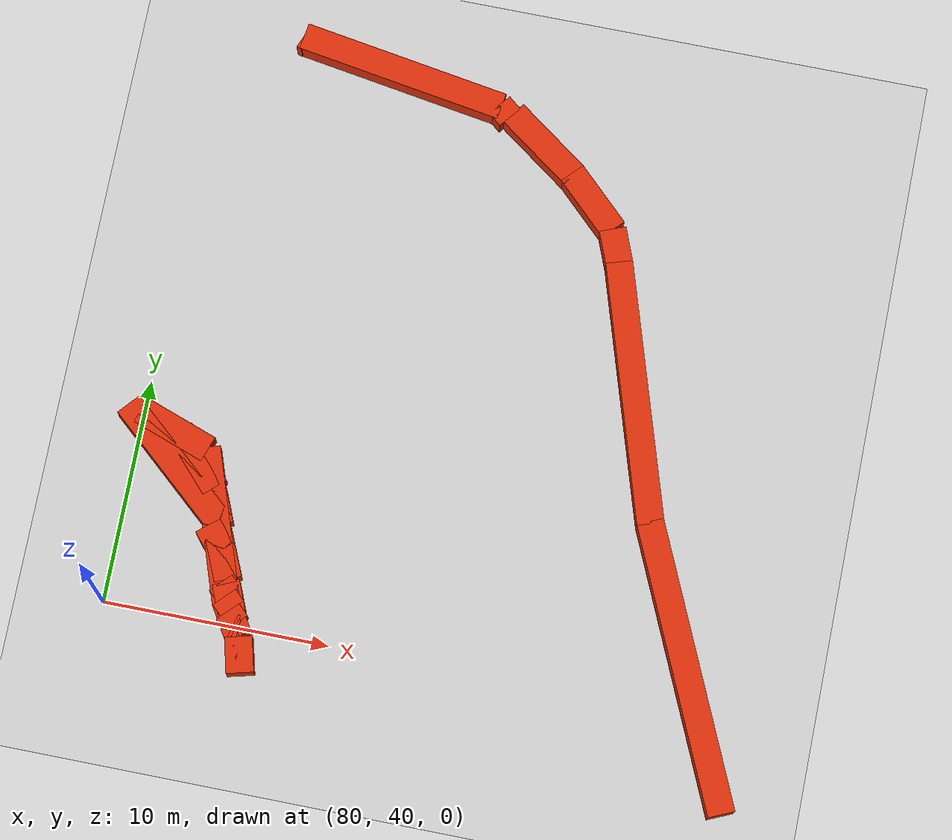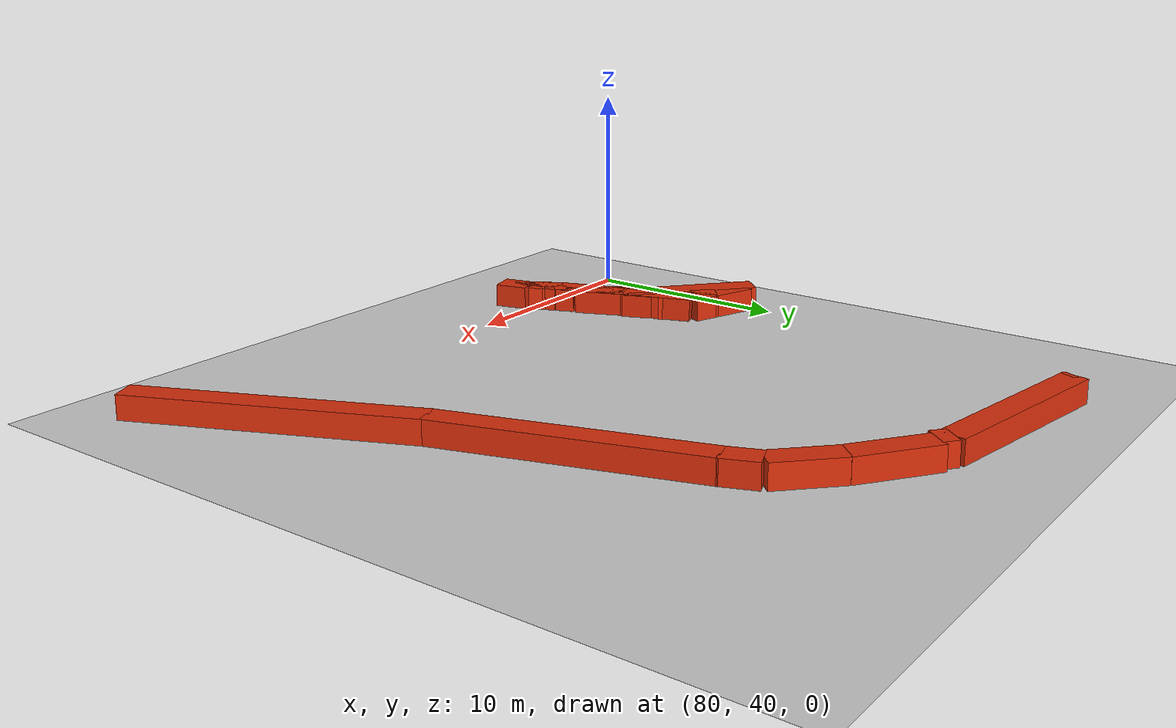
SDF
<sdf version="1.6">
 <world name="default">
  <include><uri>model://ground_plane</uri></include>
  <model name="track_inner_guardrail">
   <static>true</static>
   <link name="seg_084">
    <pose>86.35 38.77 0.55 0 0 1.8204</pose>
    <collision name="col"><geometry><box><size>1.58 1.20 1.1</size></box></geometry></collision>
    <visual name="vis">
     <geometry><box><size>1.58 1.20 1.1</size></box></geometry>
     <material>
      <ambient>0.35 0.08 0.02 1</ambient>
      <diffuse>0.85 0.18 0.04 1</diffuse>
      <specular>0.2 0.2 0.2 1</specular>
     </material>
    </visual>
   </link>
   <link name="seg_085">
    <pose>85.73 40.23 0.55 0 0 2.1179</pose>
    <collision name="col"><geometry><box><size>1.62 1.20 1.1</size></box></geometry></collision>
    <visual name="vis">
     <geometry><box><size>1.62 1.20 1.1</size></box></geometry>
     <material>
      <ambient>0.35 0.08 0.02 1</ambient>
      <diffuse>0.85 0.18 0.04 1</diffuse>
      <specular>0.2 0.2 0.2 1</specular>
     </material>
    </visual>
   </link>
   <link name="seg_086">
    <pose>84.21 44.13 0.55 0 0 1.9013</pose>
    <collision name="col"><geometry><box><size>6.91 1.20 1.1</size></box></geometry></collision>
    <visual name="vis">
     <geometry><box><size>6.91 1.20 1.1</size></box></geometry>
     <material>
      <ambient>0.35 0.08 0.02 1</ambient>
      <diffuse>0.85 0.18 0.04 1</diffuse>
      <specular>0.2 0.2 0.2 1</specular>
     </material>
    </visual>
   </link>
   <link name="seg_087">
    <pose>81.55 47.90 0.55 0 0 2.7996</pose>
    <collision name="col"><geometry><box><size>3.43 1.20 1.1</size></box></geometry></collision>
    <visual name="vis">
     <geometry><box><size>3.43 1.20 1.1</size></box></geometry>
     <material>
      <ambient>0.35 0.08 0.02 1</ambient>
      <diffuse>0.85 0.18 0.04 1</diffuse>
      <specular>0.2 0.2 0.2 1</specular>
     </material>
    </visual>
   </link>
   <link name="seg_104">
    <pose>81.83 46.44 0.55 0 0 -0.7191</pose>
    <collision name="col"><geometry><box><size>6.63 1.20 1.1</size></box></geometry></collision>
    <visual name="vis">
     <geometry><box><size>6.63 1.20 1.1</size></box></geometry>
     <material>
      <ambient>0.35 0.08 0.02 1</ambient>
      <diffuse>0.85 0.18 0.04 1</diffuse>
      <specular>0.2 0.2 0.2 1</specular>
     </material>
    </visual>
   </link>
   <link name="seg_105">
    <pose>84.26 43.54 0.55 0 0 -0.8898</pose>
    <collision name="col"><geometry><box><size>1.27 1.20 1.1</size></box></geometry></collision>
    <visual name="vis">
     <geometry><box><size>1.27 1.20 1.1</size></box></geometry>
     <material>
      <ambient>0.35 0.08 0.02 1</ambient>
      <diffuse>0.85 0.18 0.04 1</diffuse>
      <specular>0.2 0.2 0.2 1</specular>
     </material>
    </visual>
   </link>
   <link name="seg_106">
    <pose>85.15 41.47 0.55 0 0 -0.7754</pose>
    <collision name="col"><geometry><box><size>0.62 1.20 1.1</size></box></geometry></collision>
    <visual name="vis">
     <geometry><box><size>0.62 1.20 1.1</size></box></geometry>
     <material>
      <ambient>0.35 0.08 0.02 1</ambient>
      <diffuse>0.85 0.18 0.04 1</diffuse>
      <specular>0.2 0.2 0.2 1</specular>
     </material>
    </visual>
   </link>
   <link name="seg_107">
    <pose>85.43 40.88 0.55 0 0 -0.7754</pose>
    <collision name="col"><geometry><box><size>0.62 1.20 1.1</size></box></geometry></collision>
    <visual name="vis">
     <geometry><box><size>0.62 1.20 1.1</size></box></geometry>
     <material>
      <ambient>0.35 0.08 0.02 1</ambient>
      <diffuse>0.85 0.18 0.04 1</diffuse>
      <specular>0.2 0.2 0.2 1</specular>
     </material>
    </visual>
   </link>
   <link name="seg_108">
    <pose>85.71 40.29 0.55 0 0 -0.7754</pose>
    <collision name="col"><geometry><box><size>0.62 1.20 1.1</size></box></geometry></collision>
    <visual name="vis">
     <geometry><box><size>0.62 1.20 1.1</size></box></geometry>
     <material>
      <ambient>0.35 0.08 0.02 1</ambient>
      <diffuse>0.85 0.18 0.04 1</diffuse>
      <specular>0.2 0.2 0.2 1</specular>
     </material>
    </visual>
   </link>
   <link name="seg_109">
    <pose>85.92 39.85 0.55 0 0 -0.2546</pose>
    <collision name="col"><geometry><box><size>0.23 1.20 1.1</size></box></geometry></collision>
    <visual name="vis">
     <geometry><box><size>0.23 1.20 1.1</size></box></geometry>
     <material>
      <ambient>0.35 0.08 0.02 1</ambient>
      <diffuse>0.85 0.18 0.04 1</diffuse>
      <specular>0.2 0.2 0.2 1</specular>
     </material>
    </visual>
   </link>
   <link name="seg_110">
    <pose>86.18 39.16 0.55 0 0 3.1105</pose>
    <collision name="col"><geometry><box><size>0.20 1.20 1.1</size></box></geometry></collision>
    <visual name="vis">
     <geometry><box><size>0.20 1.20 1.1</size></box></geometry>
     <material>
      <ambient>0.35 0.08 0.02 1</ambient>
      <diffuse>0.85 0.18 0.04 1</diffuse>
      <specular>0.2 0.2 0.2 1</specular>
     </material>
    </visual>
   </link>
   <link name="seg_111">
    <pose>85.98 39.67 0.55 0 0 3.1105</pose>
    <collision name="col"><geometry><box><size>0.20 1.20 1.1</size></box></geometry></collision>
    <visual name="vis">
     <geometry><box><size>0.20 1.20 1.1</size></box></geometry>
     <material>
      <ambient>0.35 0.08 0.02 1</ambient>
      <diffuse>0.85 0.18 0.04 1</diffuse>
      <specular>0.2 0.2 0.2 1</specular>
     </material>
    </visual>
   </link>
   <link name="seg_112">
    <pose>85.42 41.06 0.55 0 0 1.9654</pose>
    <collision name="col"><geometry><box><size>1.49 1.20 1.1</size></box></geometry></collision>
    <visual name="vis">
     <geometry><box><size>1.49 1.20 1.1</size></box></geometry>
     <material>
      <ambient>0.35 0.08 0.02 1</ambient>
      <diffuse>0.85 0.18 0.04 1</diffuse>
      <specular>0.2 0.2 0.2 1</specular>
     </material>
    </visual>
   </link>
   <link name="seg_113">
    <pose>84.73 42.95 0.55 0 0 1.9826</pose>
    <collision name="col"><geometry><box><size>2.33 1.20 1.1</size></box></geometry></collision>
    <visual name="vis">
     <geometry><box><size>2.33 1.20 1.1</size></box></geometry>
     <material>
      <ambient>0.35 0.08 0.02 1</ambient>
      <diffuse>0.85 0.18 0.04 1</diffuse>
      <specular>0.2 0.2 0.2 1</specular>
     </material>
    </visual>
   </link>
   <link name="seg_114">
    <pose>84.05 44.85 0.55 0 0 1.9654</pose>
    <collision name="col"><geometry><box><size>1.49 1.20 1.1</size></box></geometry></collision>
    <visual name="vis">
     <geometry><box><size>1.49 1.20 1.1</size></box></geometry>
     <material>
      <ambient>0.35 0.08 0.02 1</ambient>
      <diffuse>0.85 0.18 0.04 1</diffuse>
      <specular>0.2 0.2 0.2 1</specular>
     </material>
    </visual>
   </link>
   <link name="seg_115">
    <pose>82.78 46.84 0.55 0 0 2.3169</pose>
    <collision name="col"><geometry><box><size>3.02 1.20 1.1</size></box></geometry></collision>
    <visual name="vis">
     <geometry><box><size>3.02 1.20 1.1</size></box></geometry>
     <material>
      <ambient>0.35 0.08 0.02 1</ambient>
      <diffuse>0.85 0.18 0.04 1</diffuse>
      <specular>0.2 0.2 0.2 1</specular>
     </material>
    </visual>
   </link>
  </model>
  <model name="track_outer_guardrail">
   <static>true</static>
   <link name="seg_068">
    <pose>105.29 42.00 0.55 0 0 1.9901</pose>
    <collision name="col"><geometry><box><size>13.02 1.20 1.1</size></box></geometry></collision>
    <visual name="vis">
     <geometry><box><size>13.02 1.20 1.1</size></box></geometry>
     <material>
      <ambient>0.35 0.08 0.02 1</ambient>
      <diffuse>0.85 0.18 0.04 1</diffuse>
      <specular>0.2 0.2 0.2 1</specular>
     </material>
    </visual>
   </link>
   <link name="seg_069">
    <pose>100.93 53.47 0.55 0 0 1.8723</pose>
    <collision name="col"><geometry><box><size>11.79 1.20 1.1</size></box></geometry></collision>
    <visual name="vis">
     <geometry><box><size>11.79 1.20 1.1</size></box></geometry>
     <material>
      <ambient>0.35 0.08 0.02 1</ambient>
      <diffuse>0.85 0.18 0.04 1</diffuse>
      <specular>0.2 0.2 0.2 1</specular>
     </material>
    </visual>
   </link>
   <link name="seg_070">
    <pose>98.92 59.75 0.55 0 0 1.9441</pose>
    <collision name="col"><geometry><box><size>1.65 1.20 1.1</size></box></geometry></collision>
    <visual name="vis">
     <geometry><box><size>1.65 1.20 1.1</size></box></geometry>
     <material>
      <ambient>0.35 0.08 0.02 1</ambient>
      <diffuse>0.85 0.18 0.04 1</diffuse>
      <specular>0.2 0.2 0.2 1</specular>
     </material>
    </visual>
   </link>
   <link name="seg_071">
    <pose>97.52 61.59 0.55 0 0 2.3741</pose>
    <collision name="col"><geometry><box><size>3.14 1.20 1.1</size></box></geometry></collision>
    <visual name="vis">
     <geometry><box><size>3.14 1.20 1.1</size></box></geometry>
     <material>
      <ambient>0.35 0.08 0.02 1</ambient>
      <diffuse>0.85 0.18 0.04 1</diffuse>
      <specular>0.2 0.2 0.2 1</specular>
     </material>
    </visual>
   </link>
   <link name="seg_072">
    <pose>94.90 63.75 0.55 0 0 2.5164</pose>
    <collision name="col"><geometry><box><size>3.91 1.20 1.1</size></box></geometry></collision>
    <visual name="vis">
     <geometry><box><size>3.91 1.20 1.1</size></box></geometry>
     <material>
      <ambient>0.35 0.08 0.02 1</ambient>
      <diffuse>0.85 0.18 0.04 1</diffuse>
      <specular>0.2 0.2 0.2 1</specular>
     </material>
    </visual>
   </link>
   <link name="seg_073">
    <pose>92.91 64.91 0.55 0 0 2.4532</pose>
    <collision name="col"><geometry><box><size>0.74 1.20 1.1</size></box></geometry></collision>
    <visual name="vis">
     <geometry><box><size>0.74 1.20 1.1</size></box></geometry>
     <material>
      <ambient>0.35 0.08 0.02 1</ambient>
      <diffuse>0.85 0.18 0.04 1</diffuse>
      <specular>0.2 0.2 0.2 1</specular>
     </material>
    </visual>
   </link>
   <link name="seg_074">
    <pose>88.09 65.85 0.55 0 0 2.9812</pose>
    <collision name="col"><geometry><box><size>9.40 1.20 1.1</size></box></geometry></collision>
    <visual name="vis">
     <geometry><box><size>9.40 1.20 1.1</size></box></geometry>
     <material>
      <ambient>0.35 0.08 0.02 1</ambient>
      <diffuse>0.85 0.18 0.04 1</diffuse>
      <specular>0.2 0.2 0.2 1</specular>
     </material>
    </visual>
   </link>
   <link name="seg_075">
    <pose>83.57 66.56 0.55 0 0 -0.3905</pose>
    <collision name="col"><geometry><box><size>0.25 1.20 1.1</size></box></geometry></collision>
    <visual name="vis">
     <geometry><box><size>0.25 1.20 1.1</size></box></geometry>
     <material>
      <ambient>0.35 0.08 0.02 1</ambient>
      <diffuse>0.85 0.18 0.04 1</diffuse>
      <specular>0.2 0.2 0.2 1</specular>
     </material>
    </visual>
   </link>
  </model>
 </world>
</sdf>
